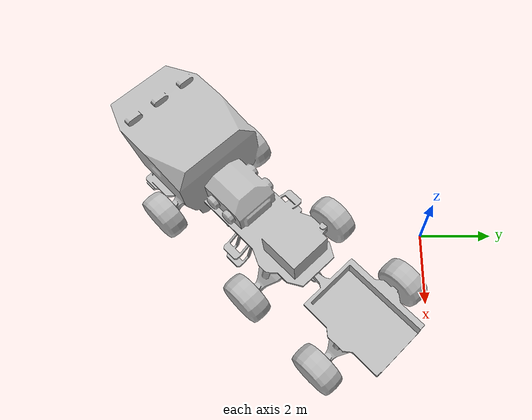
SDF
<sdf version="1.6">
 <world name="SRC_finals">
  <include>
   <pose>-0.322385723119031
        -4.869345478958836
        0
        0
        0
        -0.7853981633974485</pose>
   <uri>model://mars_explorer</uri>
  </include>
 </world>
</sdf>
